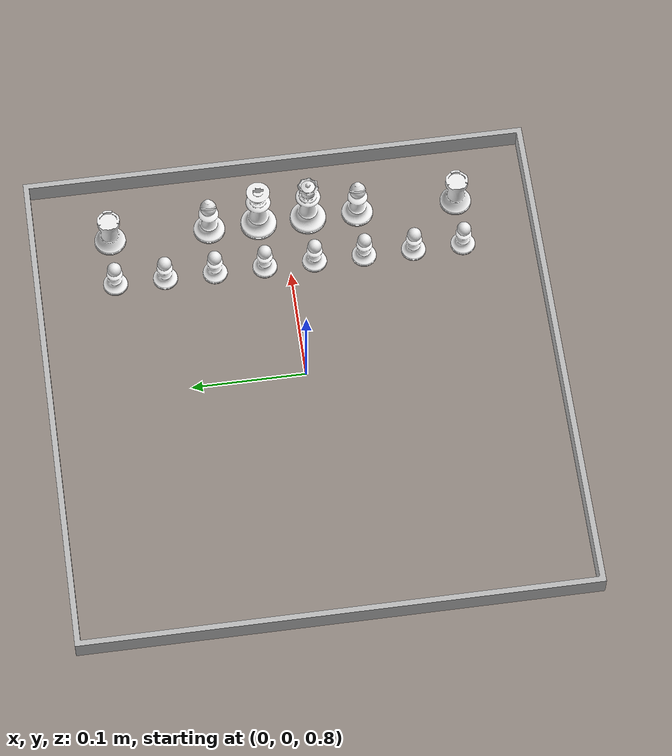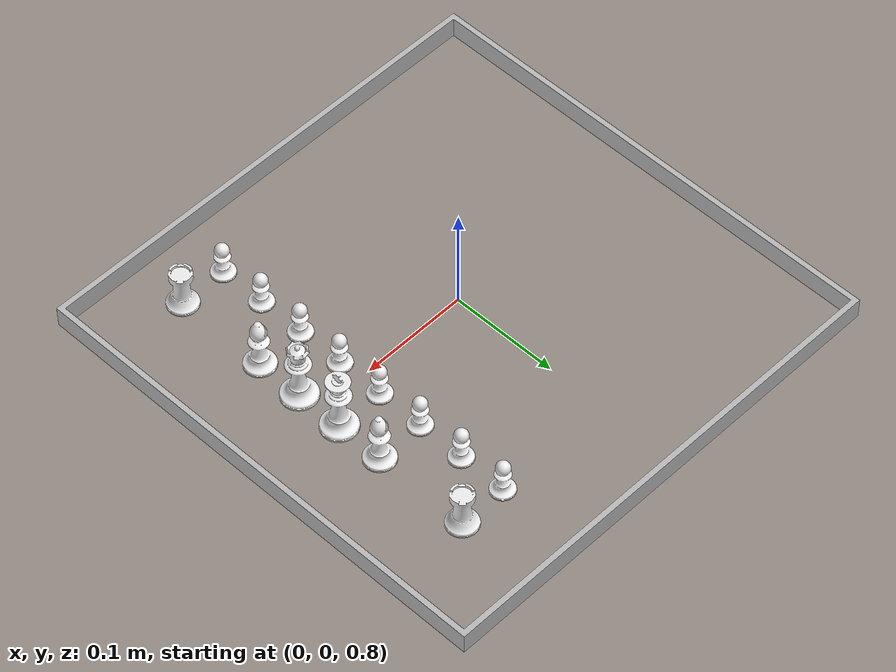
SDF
<sdf version="1.6">
 <world name="ur3_chess_game">
  <include><uri>model://sun</uri></include>
  <model name="chess_board_border">
   <pose>0 0 0.775 0 0 0</pose>
   <link name="chess_board_border">
    <inertial>
     <mass>0.01</mass>
     <inertia>
      <ixx>0.166667</ixx>
      <ixy>0</ixy>
      <ixz>0</ixz>
      <iyy>0.166667</iyy>
      <iyz>0</iyz>
      <izz>0.166667</izz>
     </inertia>
    </inertial>
    <visual name="visual">
     <geometry><mesh><uri>model://chess_board_border/chess_board_border.stl</uri></mesh></geometry>
     <material>
      <script>
       <name>ChessBoardBorderMaterial</name>
       <uri>model://chess_board_border/materials/scripts</uri>
       <uri>model://chess_board_border/materials/textures</uri>
      </script>
     </material>
    </visual>
    <collision name="collision">
     <geometry><mesh><uri>model://chess_board_border/chess_board_border.stl</uri></mesh></geometry>
     <surface>
      <friction>
       <ode><mu>1</mu><mu2>1</mu2><fdir1>0 0 0</fdir1><slip1>0</slip1><slip2>0</slip2></ode>
       <torsional>
        <coefficient>1</coefficient>
        <patch_radius>0</patch_radius>
        <surface_radius>0</surface_radius>
        <use_patch_radius>1</use_patch_radius>
        <ode><slip>0</slip></ode>
       </torsional>
      </friction>
      <bounce><restitution_coefficient>0</restitution_coefficient><threshold>1e+06</threshold></bounce>
      <contact>
       <collide_without_contact>0</collide_without_contact>
       <collide_without_contact_bitmask>1</collide_without_contact_bitmask>
       <collide_bitmask>1</collide_bitmask>
       <ode>
        <soft_cfm>0</soft_cfm>
        <soft_erp>0.2</soft_erp>
        <kp>1e+13</kp>
        <kd>1</kd>
        <max_vel>0.01</max_vel>
        <min_depth>0</min_depth>
       </ode>
       <bullet>
        <split_impulse>1</split_impulse>
        <split_impulse_penetration_threshold>-0.01</split_impulse_penetration_threshold>
        <soft_cfm>0</soft_cfm>
        <soft_erp>0.2</soft_erp>
        <kp>1e+13</kp>
        <kd>1</kd>
       </bullet>
      </contact>
     </surface>
    </collision>
   </link>
   <static>0</static>
  </model>
  <model name="pawn_white_1">
   <pose>0.11 -0.154 0.8 0 0 0</pose>
   <link name="link">
    <inertial>
     <mass>0.1</mass>
     <inertia>
      <ixx>0.166667</ixx>
      <ixy>0</ixy>
      <ixz>0</ixz>
      <iyy>0.166667</iyy>
      <iyz>0</iyz>
      <izz>0.166667</izz>
     </inertia>
    </inertial>
    <visual name="visual">
     <geometry><mesh><uri>model://pawn_white/pawn.stl</uri><scale>0.001 0.001 0.001</scale></mesh></geometry>
     <material>
      <lighting>1</lighting>
      <script><uri>file://media/materials/scripts/gazebo.material</uri><name>Gazebo/White</name></script>
      <shader type="pixel"><normal_map>__default__</normal_map></shader>
      <ambient>1 1 1 1</ambient>
      <diffuse>1 1 1 1</diffuse>
      <specular>0.1 0.1 0.1 1</specular>
      <emissive>0 0 0 1</emissive>
     </material>
    </visual>
    <collision name="collision">
     <geometry><mesh><uri>model://pawn_white/pawn.stl</uri><scale>0.001 0.001 0.001</scale></mesh></geometry>
     <surface>
      <friction>
       <ode><mu>1</mu><mu2>1</mu2><fdir1>0 0 0</fdir1><slip1>0</slip1><slip2>0</slip2></ode>
       <torsional>
        <coefficient>1</coefficient>
        <patch_radius>0</patch_radius>
        <surface_radius>0</surface_radius>
        <use_patch_radius>1</use_patch_radius>
        <ode><slip>0</slip></ode>
       </torsional>
      </friction>
      <bounce><restitution_coefficient>0</restitution_coefficient><threshold>1e+06</threshold></bounce>
      <contact>
       <collide_without_contact>0</collide_without_contact>
       <collide_without_contact_bitmask>1</collide_without_contact_bitmask>
       <collide_bitmask>1</collide_bitmask>
       <ode>
        <soft_cfm>0</soft_cfm>
        <soft_erp>0.2</soft_erp>
        <kp>1e+13</kp>
        <kd>1</kd>
        <max_vel>0.01</max_vel>
        <min_depth>0</min_depth>
       </ode>
       <bullet>
        <split_impulse>1</split_impulse>
        <split_impulse_penetration_threshold>-0.01</split_impulse_penetration_threshold>
        <soft_cfm>0</soft_cfm>
        <soft_erp>0.2</soft_erp>
        <kp>1e+13</kp>
        <kd>1</kd>
       </bullet>
      </contact>
     </surface>
    </collision>
   </link>
   <static>0</static>
  </model>
  <model name="pawn_white_2">
   <pose>0.11 -0.11 0.8 0 0 0</pose>
   <link name="link">
    <inertial>
     <mass>0.1</mass>
     <inertia>
      <ixx>0.166667</ixx>
      <ixy>0</ixy>
      <ixz>0</ixz>
      <iyy>0.166667</iyy>
      <iyz>0</iyz>
      <izz>0.166667</izz>
     </inertia>
    </inertial>
    <visual name="visual">
     <geometry><mesh><uri>model://pawn_white/pawn.stl</uri><scale>0.001 0.001 0.001</scale></mesh></geometry>
     <material>
      <lighting>1</lighting>
      <script><uri>file://media/materials/scripts/gazebo.material</uri><name>Gazebo/White</name></script>
      <shader type="pixel"><normal_map>__default__</normal_map></shader>
      <ambient>1 1 1 1</ambient>
      <diffuse>1 1 1 1</diffuse>
      <specular>0.1 0.1 0.1 1</specular>
      <emissive>0 0 0 1</emissive>
     </material>
    </visual>
    <collision name="collision">
     <geometry><mesh><uri>model://pawn_white/pawn.stl</uri><scale>0.001 0.001 0.001</scale></mesh></geometry>
     <surface>
      <friction>
       <ode><mu>1</mu><mu2>1</mu2><fdir1>0 0 0</fdir1><slip1>0</slip1><slip2>0</slip2></ode>
       <torsional>
        <coefficient>1</coefficient>
        <patch_radius>0</patch_radius>
        <surface_radius>0</surface_radius>
        <use_patch_radius>1</use_patch_radius>
        <ode><slip>0</slip></ode>
       </torsional>
      </friction>
      <bounce><restitution_coefficient>0</restitution_coefficient><threshold>1e+06</threshold></bounce>
      <contact>
       <collide_without_contact>0</collide_without_contact>
       <collide_without_contact_bitmask>1</collide_without_contact_bitmask>
       <collide_bitmask>1</collide_bitmask>
       <ode>
        <soft_cfm>0</soft_cfm>
        <soft_erp>0.2</soft_erp>
        <kp>1e+13</kp>
        <kd>1</kd>
        <max_vel>0.01</max_vel>
        <min_depth>0</min_depth>
       </ode>
       <bullet>
        <split_impulse>1</split_impulse>
        <split_impulse_penetration_threshold>-0.01</split_impulse_penetration_threshold>
        <soft_cfm>0</soft_cfm>
        <soft_erp>0.2</soft_erp>
        <kp>1e+13</kp>
        <kd>1</kd>
       </bullet>
      </contact>
     </surface>
    </collision>
   </link>
   <static>0</static>
  </model>
  <model name="pawn_white_3">
   <pose>0.11 -0.066 0.8 0 0 0</pose>
   <link name="link">
    <inertial>
     <mass>0.1</mass>
     <inertia>
      <ixx>0.166667</ixx>
      <ixy>0</ixy>
      <ixz>0</ixz>
      <iyy>0.166667</iyy>
      <iyz>0</iyz>
      <izz>0.166667</izz>
     </inertia>
    </inertial>
    <visual name="visual">
     <geometry><mesh><uri>model://pawn_white/pawn.stl</uri><scale>0.001 0.001 0.001</scale></mesh></geometry>
     <material>
      <lighting>1</lighting>
      <script><uri>file://media/materials/scripts/gazebo.material</uri><name>Gazebo/White</name></script>
      <shader type="pixel"><normal_map>__default__</normal_map></shader>
      <ambient>1 1 1 1</ambient>
      <diffuse>1 1 1 1</diffuse>
      <specular>0.1 0.1 0.1 1</specular>
      <emissive>0 0 0 1</emissive>
     </material>
    </visual>
    <collision name="collision">
     <geometry><mesh><uri>model://pawn_white/pawn.stl</uri><scale>0.001 0.001 0.001</scale></mesh></geometry>
     <surface>
      <friction>
       <ode><mu>1</mu><mu2>1</mu2><fdir1>0 0 0</fdir1><slip1>0</slip1><slip2>0</slip2></ode>
       <torsional>
        <coefficient>1</coefficient>
        <patch_radius>0</patch_radius>
        <surface_radius>0</surface_radius>
        <use_patch_radius>1</use_patch_radius>
        <ode><slip>0</slip></ode>
       </torsional>
      </friction>
      <bounce><restitution_coefficient>0</restitution_coefficient><threshold>1e+06</threshold></bounce>
      <contact>
       <collide_without_contact>0</collide_without_contact>
       <collide_without_contact_bitmask>1</collide_without_contact_bitmask>
       <collide_bitmask>1</collide_bitmask>
       <ode>
        <soft_cfm>0</soft_cfm>
        <soft_erp>0.2</soft_erp>
        <kp>1e+13</kp>
        <kd>1</kd>
        <max_vel>0.01</max_vel>
        <min_depth>0</min_depth>
       </ode>
       <bullet>
        <split_impulse>1</split_impulse>
        <split_impulse_penetration_threshold>-0.01</split_impulse_penetration_threshold>
        <soft_cfm>0</soft_cfm>
        <soft_erp>0.2</soft_erp>
        <kp>1e+13</kp>
        <kd>1</kd>
       </bullet>
      </contact>
     </surface>
    </collision>
   </link>
   <static>0</static>
  </model>
  <model name="pawn_white_4">
   <pose>0.11 -0.022 0.8 0 0 0</pose>
   <link name="link">
    <inertial>
     <mass>0.1</mass>
     <inertia>
      <ixx>0.166667</ixx>
      <ixy>0</ixy>
      <ixz>0</ixz>
      <iyy>0.166667</iyy>
      <iyz>0</iyz>
      <izz>0.166667</izz>
     </inertia>
    </inertial>
    <visual name="visual">
     <geometry><mesh><uri>model://pawn_white/pawn.stl</uri><scale>0.001 0.001 0.001</scale></mesh></geometry>
     <material>
      <lighting>1</lighting>
      <script><uri>file://media/materials/scripts/gazebo.material</uri><name>Gazebo/White</name></script>
      <shader type="pixel"><normal_map>__default__</normal_map></shader>
      <ambient>1 1 1 1</ambient>
      <diffuse>1 1 1 1</diffuse>
      <specular>0.1 0.1 0.1 1</specular>
      <emissive>0 0 0 1</emissive>
     </material>
    </visual>
    <collision name="collision">
     <geometry><mesh><uri>model://pawn_white/pawn.stl</uri><scale>0.001 0.001 0.001</scale></mesh></geometry>
     <surface>
      <friction>
       <ode><mu>1</mu><mu2>1</mu2><fdir1>0 0 0</fdir1><slip1>0</slip1><slip2>0</slip2></ode>
       <torsional>
        <coefficient>1</coefficient>
        <patch_radius>0</patch_radius>
        <surface_radius>0</surface_radius>
        <use_patch_radius>1</use_patch_radius>
        <ode><slip>0</slip></ode>
       </torsional>
      </friction>
      <bounce><restitution_coefficient>0</restitution_coefficient><threshold>1e+06</threshold></bounce>
      <contact>
       <collide_without_contact>0</collide_without_contact>
       <collide_without_contact_bitmask>1</collide_without_contact_bitmask>
       <collide_bitmask>1</collide_bitmask>
       <ode>
        <soft_cfm>0</soft_cfm>
        <soft_erp>0.2</soft_erp>
        <kp>1e+13</kp>
        <kd>1</kd>
        <max_vel>0.01</max_vel>
        <min_depth>0</min_depth>
       </ode>
       <bullet>
        <split_impulse>1</split_impulse>
        <split_impulse_penetration_threshold>-0.01</split_impulse_penetration_threshold>
        <soft_cfm>0</soft_cfm>
        <soft_erp>0.2</soft_erp>
        <kp>1e+13</kp>
        <kd>1</kd>
       </bullet>
      </contact>
     </surface>
    </collision>
   </link>
   <static>0</static>
  </model>
  <model name="pawn_white_5">
   <pose>0.11 0.022 0.8 0 0 0</pose>
   <link name="link">
    <inertial>
     <mass>0.1</mass>
     <inertia>
      <ixx>0.166667</ixx>
      <ixy>0</ixy>
      <ixz>0</ixz>
      <iyy>0.166667</iyy>
      <iyz>0</iyz>
      <izz>0.166667</izz>
     </inertia>
    </inertial>
    <visual name="visual">
     <geometry><mesh><uri>model://pawn_white/pawn.stl</uri><scale>0.001 0.001 0.001</scale></mesh></geometry>
     <material>
      <lighting>1</lighting>
      <script><uri>file://media/materials/scripts/gazebo.material</uri><name>Gazebo/White</name></script>
      <shader type="pixel"><normal_map>__default__</normal_map></shader>
      <ambient>1 1 1 1</ambient>
      <diffuse>1 1 1 1</diffuse>
      <specular>0.1 0.1 0.1 1</specular>
      <emissive>0 0 0 1</emissive>
     </material>
    </visual>
    <collision name="collision">
     <geometry><mesh><uri>model://pawn_white/pawn.stl</uri><scale>0.001 0.001 0.001</scale></mesh></geometry>
     <surface>
      <friction>
       <ode><mu>1</mu><mu2>1</mu2><fdir1>0 0 0</fdir1><slip1>0</slip1><slip2>0</slip2></ode>
       <torsional>
        <coefficient>1</coefficient>
        <patch_radius>0</patch_radius>
        <surface_radius>0</surface_radius>
        <use_patch_radius>1</use_patch_radius>
        <ode><slip>0</slip></ode>
       </torsional>
      </friction>
      <bounce><restitution_coefficient>0</restitution_coefficient><threshold>1e+06</threshold></bounce>
      <contact>
       <collide_without_contact>0</collide_without_contact>
       <collide_without_contact_bitmask>1</collide_without_contact_bitmask>
       <collide_bitmask>1</collide_bitmask>
       <ode>
        <soft_cfm>0</soft_cfm>
        <soft_erp>0.2</soft_erp>
        <kp>1e+13</kp>
        <kd>1</kd>
        <max_vel>0.01</max_vel>
        <min_depth>0</min_depth>
       </ode>
       <bullet>
        <split_impulse>1</split_impulse>
        <split_impulse_penetration_threshold>-0.01</split_impulse_penetration_threshold>
        <soft_cfm>0</soft_cfm>
        <soft_erp>0.2</soft_erp>
        <kp>1e+13</kp>
        <kd>1</kd>
       </bullet>
      </contact>
     </surface>
    </collision>
   </link>
   <static>0</static>
  </model>
  <model name="pawn_white_6">
   <pose>0.11 0.066 0.8 0 0 0</pose>
   <link name="link">
    <inertial>
     <mass>0.1</mass>
     <inertia>
      <ixx>0.166667</ixx>
      <ixy>0</ixy>
      <ixz>0</ixz>
      <iyy>0.166667</iyy>
      <iyz>0</iyz>
      <izz>0.166667</izz>
     </inertia>
    </inertial>
    <visual name="visual">
     <geometry><mesh><uri>model://pawn_white/pawn.stl</uri><scale>0.001 0.001 0.001</scale></mesh></geometry>
     <material>
      <lighting>1</lighting>
      <script><uri>file://media/materials/scripts/gazebo.material</uri><name>Gazebo/White</name></script>
      <shader type="pixel"><normal_map>__default__</normal_map></shader>
      <ambient>1 1 1 1</ambient>
      <diffuse>1 1 1 1</diffuse>
      <specular>0.1 0.1 0.1 1</specular>
      <emissive>0 0 0 1</emissive>
     </material>
    </visual>
    <collision name="collision">
     <geometry><mesh><uri>model://pawn_white/pawn.stl</uri><scale>0.001 0.001 0.001</scale></mesh></geometry>
     <surface>
      <friction>
       <ode><mu>1</mu><mu2>1</mu2><fdir1>0 0 0</fdir1><slip1>0</slip1><slip2>0</slip2></ode>
       <torsional>
        <coefficient>1</coefficient>
        <patch_radius>0</patch_radius>
        <surface_radius>0</surface_radius>
        <use_patch_radius>1</use_patch_radius>
        <ode><slip>0</slip></ode>
       </torsional>
      </friction>
      <bounce><restitution_coefficient>0</restitution_coefficient><threshold>1e+06</threshold></bounce>
      <contact>
       <collide_without_contact>0</collide_without_contact>
       <collide_without_contact_bitmask>1</collide_without_contact_bitmask>
       <collide_bitmask>1</collide_bitmask>
       <ode>
        <soft_cfm>0</soft_cfm>
        <soft_erp>0.2</soft_erp>
        <kp>1e+13</kp>
        <kd>1</kd>
        <max_vel>0.01</max_vel>
        <min_depth>0</min_depth>
       </ode>
       <bullet>
        <split_impulse>1</split_impulse>
        <split_impulse_penetration_threshold>-0.01</split_impulse_penetration_threshold>
        <soft_cfm>0</soft_cfm>
        <soft_erp>0.2</soft_erp>
        <kp>1e+13</kp>
        <kd>1</kd>
       </bullet>
      </contact>
     </surface>
    </collision>
   </link>
   <static>0</static>
  </model>
  <model name="pawn_white_7">
   <pose>0.11 0.11 0.8 0 0 0</pose>
   <link name="link">
    <inertial>
     <mass>0.1</mass>
     <inertia>
      <ixx>0.166667</ixx>
      <ixy>0</ixy>
      <ixz>0</ixz>
      <iyy>0.166667</iyy>
      <iyz>0</iyz>
      <izz>0.166667</izz>
     </inertia>
    </inertial>
    <visual name="visual">
     <geometry><mesh><uri>model://pawn_white/pawn.stl</uri><scale>0.001 0.001 0.001</scale></mesh></geometry>
     <material>
      <lighting>1</lighting>
      <script><uri>file://media/materials/scripts/gazebo.material</uri><name>Gazebo/White</name></script>
      <shader type="pixel"><normal_map>__default__</normal_map></shader>
      <ambient>1 1 1 1</ambient>
      <diffuse>1 1 1 1</diffuse>
      <specular>0.1 0.1 0.1 1</specular>
      <emissive>0 0 0 1</emissive>
     </material>
    </visual>
    <collision name="collision">
     <geometry><mesh><uri>model://pawn_white/pawn.stl</uri><scale>0.001 0.001 0.001</scale></mesh></geometry>
     <surface>
      <friction>
       <ode><mu>1</mu><mu2>1</mu2><fdir1>0 0 0</fdir1><slip1>0</slip1><slip2>0</slip2></ode>
       <torsional>
        <coefficient>1</coefficient>
        <patch_radius>0</patch_radius>
        <surface_radius>0</surface_radius>
        <use_patch_radius>1</use_patch_radius>
        <ode><slip>0</slip></ode>
       </torsional>
      </friction>
      <bounce><restitution_coefficient>0</restitution_coefficient><threshold>1e+06</threshold></bounce>
      <contact>
       <collide_without_contact>0</collide_without_contact>
       <collide_without_contact_bitmask>1</collide_without_contact_bitmask>
       <collide_bitmask>1</collide_bitmask>
       <ode>
        <soft_cfm>0</soft_cfm>
        <soft_erp>0.2</soft_erp>
        <kp>1e+13</kp>
        <kd>1</kd>
        <max_vel>0.01</max_vel>
        <min_depth>0</min_depth>
       </ode>
       <bullet>
        <split_impulse>1</split_impulse>
        <split_impulse_penetration_threshold>-0.01</split_impulse_penetration_threshold>
        <soft_cfm>0</soft_cfm>
        <soft_erp>0.2</soft_erp>
        <kp>1e+13</kp>
        <kd>1</kd>
       </bullet>
      </contact>
     </surface>
    </collision>
   </link>
   <static>0</static>
  </model>
  <model name="pawn_white_8">
   <pose>0.11 0.154 0.8 0 0 0</pose>
   <link name="link">
    <inertial>
     <mass>0.1</mass>
     <inertia>
      <ixx>0.166667</ixx>
      <ixy>0</ixy>
      <ixz>0</ixz>
      <iyy>0.166667</iyy>
      <iyz>0</iyz>
      <izz>0.166667</izz>
     </inertia>
    </inertial>
    <visual name="visual">
     <geometry><mesh><uri>model://pawn_white/pawn.stl</uri><scale>0.001 0.001 0.001</scale></mesh></geometry>
     <material>
      <lighting>1</lighting>
      <script><uri>file://media/materials/scripts/gazebo.material</uri><name>Gazebo/White</name></script>
      <shader type="pixel"><normal_map>__default__</normal_map></shader>
      <ambient>1 1 1 1</ambient>
      <diffuse>1 1 1 1</diffuse>
      <specular>0.1 0.1 0.1 1</specular>
      <emissive>0 0 0 1</emissive>
     </material>
    </visual>
    <collision name="collision">
     <geometry><mesh><uri>model://pawn_white/pawn.stl</uri><scale>0.001 0.001 0.001</scale></mesh></geometry>
     <surface>
      <friction>
       <ode><mu>1</mu><mu2>1</mu2><fdir1>0 0 0</fdir1><slip1>0</slip1><slip2>0</slip2></ode>
       <torsional>
        <coefficient>1</coefficient>
        <patch_radius>0</patch_radius>
        <surface_radius>0</surface_radius>
        <use_patch_radius>1</use_patch_radius>
        <ode><slip>0</slip></ode>
       </torsional>
      </friction>
      <bounce><restitution_coefficient>0</restitution_coefficient><threshold>1e+06</threshold></bounce>
      <contact>
       <collide_without_contact>0</collide_without_contact>
       <collide_without_contact_bitmask>1</collide_without_contact_bitmask>
       <collide_bitmask>1</collide_bitmask>
       <ode>
        <soft_cfm>0</soft_cfm>
        <soft_erp>0.2</soft_erp>
        <kp>1e+13</kp>
        <kd>1</kd>
        <max_vel>0.01</max_vel>
        <min_depth>0</min_depth>
       </ode>
       <bullet>
        <split_impulse>1</split_impulse>
        <split_impulse_penetration_threshold>-0.01</split_impulse_penetration_threshold>
        <soft_cfm>0</soft_cfm>
        <soft_erp>0.2</soft_erp>
        <kp>1e+13</kp>
        <kd>1</kd>
       </bullet>
      </contact>
     </surface>
    </collision>
   </link>
   <static>0</static>
  </model>
  <model name="rook_white_1">
   <pose>0.154 -0.154 0.8 0 0 0</pose>
   <link name="link">
    <inertial>
     <mass>0.1</mass>
     <inertia>
      <ixx>0.166667</ixx>
      <ixy>0</ixy>
      <ixz>0</ixz>
      <iyy>0.166667</iyy>
      <iyz>0</iyz>
      <izz>0.166667</izz>
     </inertia>
    </inertial>
    <visual name="visual">
     <geometry><mesh><uri>model://rook_white/rook.stl</uri><scale>0.001 0.001 0.001</scale></mesh></geometry>
     <material>
      <lighting>1</lighting>
      <script><uri>file://media/materials/scripts/gazebo.material</uri><name>Gazebo/White</name></script>
      <shader type="pixel"><normal_map>__default__</normal_map></shader>
      <ambient>1 1 1 1</ambient>
      <diffuse>1 1 1 1</diffuse>
      <specular>0.1 0.1 0.1 1</specular>
      <emissive>0 0 0 1</emissive>
     </material>
    </visual>
    <collision name="collision">
     <geometry><mesh><uri>model://rook_white/rook.stl</uri><scale>0.001 0.001 0.001</scale></mesh></geometry>
     <surface>
      <friction>
       <ode><mu>1</mu><mu2>1</mu2><fdir1>0 0 0</fdir1><slip1>0</slip1><slip2>0</slip2></ode>
       <torsional>
        <coefficient>1</coefficient>
        <patch_radius>0</patch_radius>
        <surface_radius>0</surface_radius>
        <use_patch_radius>1</use_patch_radius>
        <ode><slip>0</slip></ode>
       </torsional>
      </friction>
      <bounce><restitution_coefficient>0</restitution_coefficient><threshold>1e+06</threshold></bounce>
      <contact>
       <collide_without_contact>0</collide_without_contact>
       <collide_without_contact_bitmask>1</collide_without_contact_bitmask>
       <collide_bitmask>1</collide_bitmask>
       <ode>
        <soft_cfm>0</soft_cfm>
        <soft_erp>0.2</soft_erp>
        <kp>1e+13</kp>
        <kd>1</kd>
        <max_vel>0.01</max_vel>
        <min_depth>0</min_depth>
       </ode>
       <bullet>
        <split_impulse>1</split_impulse>
        <split_impulse_penetration_threshold>-0.01</split_impulse_penetration_threshold>
        <soft_cfm>0</soft_cfm>
        <soft_erp>0.2</soft_erp>
        <kp>1e+13</kp>
        <kd>1</kd>
       </bullet>
      </contact>
     </surface>
    </collision>
   </link>
   <static>0</static>
  </model>
  <model name="rook_white_2">
   <pose>0.154 0.154 0.8 0 0 0</pose>
   <link name="link">
    <inertial>
     <mass>0.1</mass>
     <inertia>
      <ixx>0.166667</ixx>
      <ixy>0</ixy>
      <ixz>0</ixz>
      <iyy>0.166667</iyy>
      <iyz>0</iyz>
      <izz>0.166667</izz>
     </inertia>
    </inertial>
    <visual name="visual">
     <geometry><mesh><uri>model://rook_white/rook.stl</uri><scale>0.001 0.001 0.001</scale></mesh></geometry>
     <material>
      <lighting>1</lighting>
      <script><uri>file://media/materials/scripts/gazebo.material</uri><name>Gazebo/White</name></script>
      <shader type="pixel"><normal_map>__default__</normal_map></shader>
      <ambient>1 1 1 1</ambient>
      <diffuse>1 1 1 1</diffuse>
      <specular>0.1 0.1 0.1 1</specular>
      <emissive>0 0 0 1</emissive>
     </material>
    </visual>
    <collision name="collision">
     <geometry><mesh><uri>model://rook_white/rook.stl</uri><scale>0.001 0.001 0.001</scale></mesh></geometry>
     <surface>
      <friction>
       <ode><mu>1</mu><mu2>1</mu2><fdir1>0 0 0</fdir1><slip1>0</slip1><slip2>0</slip2></ode>
       <torsional>
        <coefficient>1</coefficient>
        <patch_radius>0</patch_radius>
        <surface_radius>0</surface_radius>
        <use_patch_radius>1</use_patch_radius>
        <ode><slip>0</slip></ode>
       </torsional>
      </friction>
      <bounce><restitution_coefficient>0</restitution_coefficient><threshold>1e+06</threshold></bounce>
      <contact>
       <collide_without_contact>0</collide_without_contact>
       <collide_without_contact_bitmask>1</collide_without_contact_bitmask>
       <collide_bitmask>1</collide_bitmask>
       <ode>
        <soft_cfm>0</soft_cfm>
        <soft_erp>0.2</soft_erp>
        <kp>1e+13</kp>
        <kd>1</kd>
        <max_vel>0.01</max_vel>
        <min_depth>0</min_depth>
       </ode>
       <bullet>
        <split_impulse>1</split_impulse>
        <split_impulse_penetration_threshold>-0.01</split_impulse_penetration_threshold>
        <soft_cfm>0</soft_cfm>
        <soft_erp>0.2</soft_erp>
        <kp>1e+13</kp>
        <kd>1</kd>
       </bullet>
      </contact>
     </surface>
    </collision>
   </link>
   <static>0</static>
  </model>
  <model name="bishop_white_1">
   <pose>0.154 -0.066 0.8 0 0 0</pose>
   <link name="link">
    <inertial>
     <mass>0.1</mass>
     <inertia>
      <ixx>0.166667</ixx>
      <ixy>0</ixy>
      <ixz>0</ixz>
      <iyy>0.166667</iyy>
      <iyz>0</iyz>
      <izz>0.166667</izz>
     </inertia>
    </inertial>
    <visual name="visual">
     <geometry><mesh><uri>model://bishop_white/bishop.stl</uri><scale>0.001 0.001 0.001</scale></mesh></geometry>
     <material>
      <lighting>1</lighting>
      <script><uri>file://media/materials/scripts/gazebo.material</uri><name>Gazebo/White</name></script>
      <shader type="pixel"><normal_map>__default__</normal_map></shader>
      <ambient>1 1 1 1</ambient>
      <diffuse>1 1 1 1</diffuse>
      <specular>0.1 0.1 0.1 1</specular>
      <emissive>0 0 0 1</emissive>
     </material>
    </visual>
    <collision name="collision">
     <geometry><mesh><uri>model://bishop_white/bishop.stl</uri><scale>0.001 0.001 0.001</scale></mesh></geometry>
     <surface>
      <friction>
       <ode><mu>1</mu><mu2>1</mu2><fdir1>0 0 0</fdir1><slip1>0</slip1><slip2>0</slip2></ode>
       <torsional>
        <coefficient>1</coefficient>
        <patch_radius>0</patch_radius>
        <surface_radius>0</surface_radius>
        <use_patch_radius>1</use_patch_radius>
        <ode><slip>0</slip></ode>
       </torsional>
      </friction>
      <bounce><restitution_coefficient>0</restitution_coefficient><threshold>1e+06</threshold></bounce>
      <contact>
       <collide_without_contact>0</collide_without_contact>
       <collide_without_contact_bitmask>1</collide_without_contact_bitmask>
       <collide_bitmask>1</collide_bitmask>
       <ode>
        <soft_cfm>0</soft_cfm>
        <soft_erp>0.2</soft_erp>
        <kp>1e+13</kp>
        <kd>1</kd>
        <max_vel>0.01</max_vel>
        <min_depth>0</min_depth>
       </ode>
       <bullet>
        <split_impulse>1</split_impulse>
        <split_impulse_penetration_threshold>-0.01</split_impulse_penetration_threshold>
        <soft_cfm>0</soft_cfm>
        <soft_erp>0.2</soft_erp>
        <kp>1e+13</kp>
        <kd>1</kd>
       </bullet>
      </contact>
     </surface>
    </collision>
   </link>
   <static>0</static>
  </model>
  <model name="bishop_white_2">
   <pose>0.154 0.066 0.8 0 0 0</pose>
   <link name="link">
    <inertial>
     <mass>0.1</mass>
     <inertia>
      <ixx>0.166667</ixx>
      <ixy>0</ixy>
      <ixz>0</ixz>
      <iyy>0.166667</iyy>
      <iyz>0</iyz>
      <izz>0.166667</izz>
     </inertia>
    </inertial>
    <visual name="visual">
     <geometry><mesh><uri>model://bishop_white/bishop.stl</uri><scale>0.001 0.001 0.001</scale></mesh></geometry>
     <material>
      <lighting>1</lighting>
      <script><uri>file://media/materials/scripts/gazebo.material</uri><name>Gazebo/White</name></script>
      <shader type="pixel"><normal_map>__default__</normal_map></shader>
      <ambient>1 1 1 1</ambient>
      <diffuse>1 1 1 1</diffuse>
      <specular>0.1 0.1 0.1 1</specular>
      <emissive>0 0 0 1</emissive>
     </material>
    </visual>
    <collision name="collision">
     <geometry><mesh><uri>model://bishop_white/bishop.stl</uri><scale>0.001 0.001 0.001</scale></mesh></geometry>
     <surface>
      <friction>
       <ode><mu>1</mu><mu2>1</mu2><fdir1>0 0 0</fdir1><slip1>0</slip1><slip2>0</slip2></ode>
       <torsional>
        <coefficient>1</coefficient>
        <patch_radius>0</patch_radius>
        <surface_radius>0</surface_radius>
        <use_patch_radius>1</use_patch_radius>
        <ode><slip>0</slip></ode>
       </torsional>
      </friction>
      <bounce><restitution_coefficient>0</restitution_coefficient><threshold>1e+06</threshold></bounce>
      <contact>
       <collide_without_contact>0</collide_without_contact>
       <collide_without_contact_bitmask>1</collide_without_contact_bitmask>
       <collide_bitmask>1</collide_bitmask>
       <ode>
        <soft_cfm>0</soft_cfm>
        <soft_erp>0.2</soft_erp>
        <kp>1e+13</kp>
        <kd>1</kd>
        <max_vel>0.01</max_vel>
        <min_depth>0</min_depth>
       </ode>
       <bullet>
        <split_impulse>1</split_impulse>
        <split_impulse_penetration_threshold>-0.01</split_impulse_penetration_threshold>
        <soft_cfm>0</soft_cfm>
        <soft_erp>0.2</soft_erp>
        <kp>1e+13</kp>
        <kd>1</kd>
       </bullet>
      </contact>
     </surface>
    </collision>
   </link>
   <static>0</static>
  </model>
  <model name="queen_white">
   <pose>0.154 -0.022 0.8 0 0 0</pose>
   <link name="link">
    <inertial>
     <mass>0.1</mass>
     <inertia>
      <ixx>0.166667</ixx>
      <ixy>0</ixy>
      <ixz>0</ixz>
      <iyy>0.166667</iyy>
      <iyz>0</iyz>
      <izz>0.166667</izz>
     </inertia>
    </inertial>
    <visual name="visual">
     <geometry><mesh><uri>model://queen_white/queen.stl</uri><scale>0.001 0.001 0.001</scale></mesh></geometry>
     <material>
      <lighting>1</lighting>
      <script><uri>file://media/materials/scripts/gazebo.material</uri><name>Gazebo/White</name></script>
      <shader type="pixel"><normal_map>__default__</normal_map></shader>
      <ambient>1 1 1 1</ambient>
      <diffuse>1 1 1 1</diffuse>
      <specular>0.1 0.1 0.1 1</specular>
      <emissive>0 0 0 1</emissive>
     </material>
    </visual>
    <collision name="collision">
     <geometry><mesh><uri>model://queen_white/queen.stl</uri><scale>0.001 0.001 0.001</scale></mesh></geometry>
     <surface>
      <friction>
       <ode><mu>1</mu><mu2>1</mu2><fdir1>0 0 0</fdir1><slip1>0</slip1><slip2>0</slip2></ode>
       <torsional>
        <coefficient>1</coefficient>
        <patch_radius>0</patch_radius>
        <surface_radius>0</surface_radius>
        <use_patch_radius>1</use_patch_radius>
        <ode><slip>0</slip></ode>
       </torsional>
      </friction>
      <bounce><restitution_coefficient>0</restitution_coefficient><threshold>1e+06</threshold></bounce>
      <contact>
       <collide_without_contact>0</collide_without_contact>
       <collide_without_contact_bitmask>1</collide_without_contact_bitmask>
       <collide_bitmask>1</collide_bitmask>
       <ode>
        <soft_cfm>0</soft_cfm>
        <soft_erp>0.2</soft_erp>
        <kp>1e+13</kp>
        <kd>1</kd>
        <max_vel>0.01</max_vel>
        <min_depth>0</min_depth>
       </ode>
       <bullet>
        <split_impulse>1</split_impulse>
        <split_impulse_penetration_threshold>-0.01</split_impulse_penetration_threshold>
        <soft_cfm>0</soft_cfm>
        <soft_erp>0.2</soft_erp>
        <kp>1e+13</kp>
        <kd>1</kd>
       </bullet>
      </contact>
     </surface>
    </collision>
   </link>
   <static>0</static>
  </model>
  <model name="king_white">
   <pose>0.154 0.022 0.8 0 0 1.57</pose>
   <link name="link">
    <inertial>
     <mass>0.1</mass>
     <inertia>
      <ixx>0.166667</ixx>
      <ixy>0</ixy>
      <ixz>0</ixz>
      <iyy>0.166667</iyy>
      <iyz>0</iyz>
      <izz>0.166667</izz>
     </inertia>
    </inertial>
    <visual name="visual">
     <geometry><mesh><uri>model://king_white/king.stl</uri><scale>0.001 0.001 0.001</scale></mesh></geometry>
     <material>
      <lighting>1</lighting>
      <script><uri>file://media/materials/scripts/gazebo.material</uri><name>Gazebo/White</name></script>
      <shader type="pixel"><normal_map>__default__</normal_map></shader>
      <ambient>1 1 1 1</ambient>
      <diffuse>1 1 1 1</diffuse>
      <specular>0.1 0.1 0.1 1</specular>
      <emissive>0 0 0 1</emissive>
     </material>
    </visual>
    <collision name="collision">
     <geometry><mesh><uri>model://king_white/king.stl</uri><scale>0.001 0.001 0.001</scale></mesh></geometry>
     <surface>
      <friction>
       <ode><mu>1</mu><mu2>1</mu2><fdir1>0 0 0</fdir1><slip1>0</slip1><slip2>0</slip2></ode>
       <torsional>
        <coefficient>1</coefficient>
        <patch_radius>0</patch_radius>
        <surface_radius>0</surface_radius>
        <use_patch_radius>1</use_patch_radius>
        <ode><slip>0</slip></ode>
       </torsional>
      </friction>
      <bounce><restitution_coefficient>0</restitution_coefficient><threshold>1e+06</threshold></bounce>
      <contact>
       <collide_without_contact>0</collide_without_contact>
       <collide_without_contact_bitmask>1</collide_without_contact_bitmask>
       <collide_bitmask>1</collide_bitmask>
       <ode>
        <soft_cfm>0</soft_cfm>
        <soft_erp>0.2</soft_erp>
        <kp>1e+13</kp>
        <kd>1</kd>
        <max_vel>0.01</max_vel>
        <min_depth>0</min_depth>
       </ode>
       <bullet>
        <split_impulse>1</split_impulse>
        <split_impulse_penetration_threshold>-0.01</split_impulse_penetration_threshold>
        <soft_cfm>0</soft_cfm>
        <soft_erp>0.2</soft_erp>
        <kp>1e+13</kp>
        <kd>1</kd>
       </bullet>
      </contact>
     </surface>
    </collision>
   </link>
   <static>0</static>
  </model>
 </world>
</sdf>
